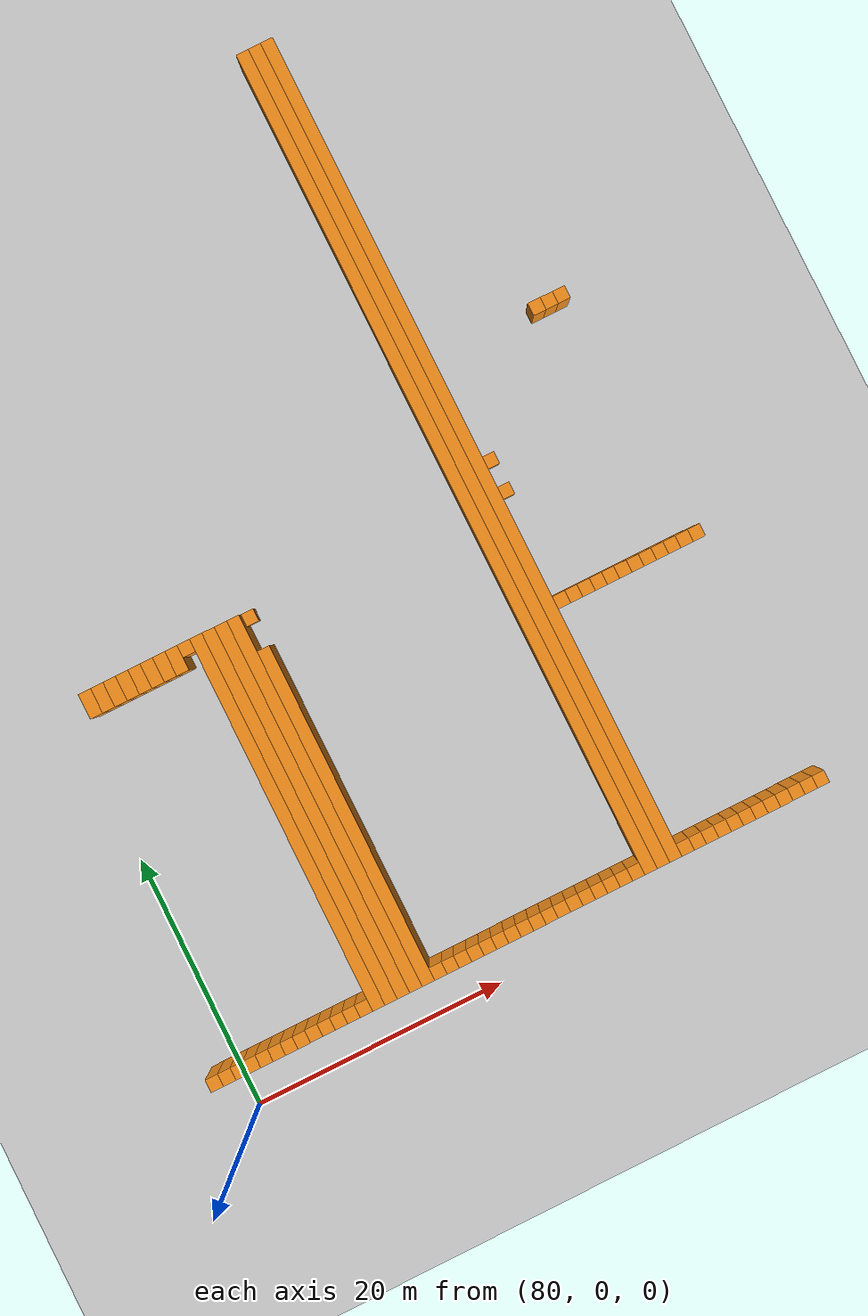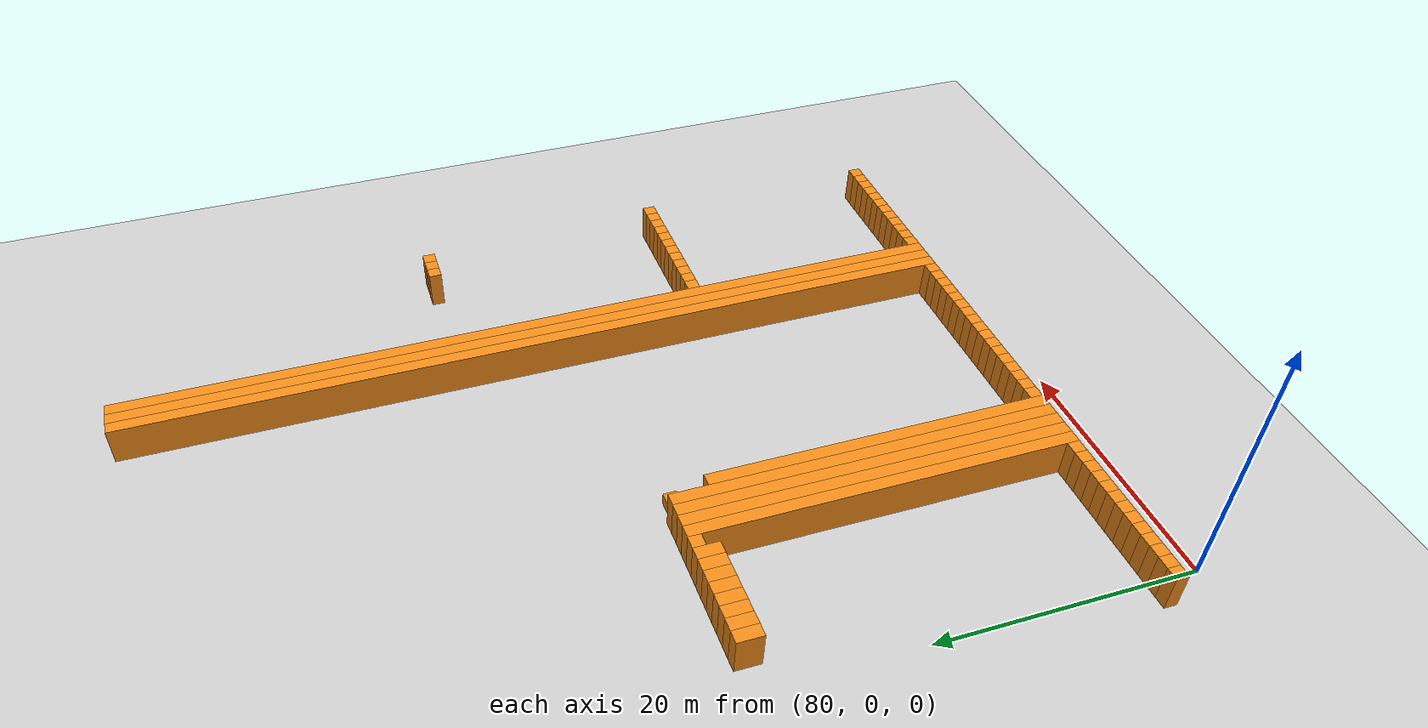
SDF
<sdf version="1.6">
 <world name="default">
  <include><uri>model://ground_plane</uri></include>
  <model name="unit_box_871">
   <pose>78.50     3.50     1.50 0 0 0</pose>
   <static>1</static>
   <link name="link">
    <inertial>
     <mass>5000</mass>
     <inertia><ixx>200</ixx><ixy>0</ixy><ixz>0</ixz><iyy>200</iyy><iyz>0</iyz><izz>200</izz></inertia>
    </inertial>
    <collision name="collision"><geometry><box><size>1 1 3</size></box></geometry></collision>
    <visual name="visual">
     <geometry><box><size>1 1 3</size></box></geometry>
     <material>
      <script><name>Gazebo/Orange</name><uri>file://media/materials/scripts/gazebo.material</uri></script>
     </material>
    </visual>
   </link>
  </model>
  <model name="unit_box_884">
   <pose>79.50     3.50     1.50 0 0 0</pose>
   <static>1</static>
   <link name="link">
    <inertial>
     <mass>5000</mass>
     <inertia><ixx>200</ixx><ixy>0</ixy><ixz>0</ixz><iyy>200</iyy><iyz>0</iyz><izz>200</izz></inertia>
    </inertial>
    <collision name="collision"><geometry><box><size>1 1 3</size></box></geometry></collision>
    <visual name="visual">
     <geometry><box><size>1 1 3</size></box></geometry>
     <material>
      <script><name>Gazebo/Orange</name><uri>file://media/materials/scripts/gazebo.material</uri></script>
     </material>
    </visual>
   </link>
  </model>
  <model name="unit_box_897">
   <pose>80.50     3.50     1.50 0 0 0</pose>
   <static>1</static>
   <link name="link">
    <inertial>
     <mass>5000</mass>
     <inertia><ixx>200</ixx><ixy>0</ixy><ixz>0</ixz><iyy>200</iyy><iyz>0</iyz><izz>200</izz></inertia>
    </inertial>
    <collision name="collision"><geometry><box><size>1 1 3</size></box></geometry></collision>
    <visual name="visual">
     <geometry><box><size>1 1 3</size></box></geometry>
     <material>
      <script><name>Gazebo/Orange</name><uri>file://media/materials/scripts/gazebo.material</uri></script>
     </material>
    </visual>
   </link>
  </model>
  <model name="unit_box_910">
   <pose>81.50     3.50     1.50 0 0 0</pose>
   <static>1</static>
   <link name="link">
    <inertial>
     <mass>5000</mass>
     <inertia><ixx>200</ixx><ixy>0</ixy><ixz>0</ixz><iyy>200</iyy><iyz>0</iyz><izz>200</izz></inertia>
    </inertial>
    <collision name="collision"><geometry><box><size>1 1 3</size></box></geometry></collision>
    <visual name="visual">
     <geometry><box><size>1 1 3</size></box></geometry>
     <material>
      <script><name>Gazebo/Orange</name><uri>file://media/materials/scripts/gazebo.material</uri></script>
     </material>
    </visual>
   </link>
  </model>
  <model name="unit_box_923">
   <pose>82.50     3.50     1.50 0 0 0</pose>
   <static>1</static>
   <link name="link">
    <inertial>
     <mass>5000</mass>
     <inertia><ixx>200</ixx><ixy>0</ixy><ixz>0</ixz><iyy>200</iyy><iyz>0</iyz><izz>200</izz></inertia>
    </inertial>
    <collision name="collision"><geometry><box><size>1 1 3</size></box></geometry></collision>
    <visual name="visual">
     <geometry><box><size>1 1 3</size></box></geometry>
     <material>
      <script><name>Gazebo/Orange</name><uri>file://media/materials/scripts/gazebo.material</uri></script>
     </material>
    </visual>
   </link>
  </model>
  <model name="unit_box_924">
   <pose>82.50    32.00     1.50 0 0 0</pose>
   <static>1</static>
   <link name="link">
    <inertial>
     <mass>5000</mass>
     <inertia><ixx>200</ixx><ixy>0</ixy><ixz>0</ixz><iyy>200</iyy><iyz>0</iyz><izz>200</izz></inertia>
    </inertial>
    <collision name="collision"><geometry><box><size>1 2 3</size></box></geometry></collision>
    <visual name="visual">
     <geometry><box><size>1 2 3</size></box></geometry>
     <material>
      <script><name>Gazebo/Orange</name><uri>file://media/materials/scripts/gazebo.material</uri></script>
     </material>
    </visual>
   </link>
  </model>
  <model name="unit_box_937">
   <pose>83.50     3.50     1.50 0 0 0</pose>
   <static>1</static>
   <link name="link">
    <inertial>
     <mass>5000</mass>
     <inertia><ixx>200</ixx><ixy>0</ixy><ixz>0</ixz><iyy>200</iyy><iyz>0</iyz><izz>200</izz></inertia>
    </inertial>
    <collision name="collision"><geometry><box><size>1 1 3</size></box></geometry></collision>
    <visual name="visual">
     <geometry><box><size>1 1 3</size></box></geometry>
     <material>
      <script><name>Gazebo/Orange</name><uri>file://media/materials/scripts/gazebo.material</uri></script>
     </material>
    </visual>
   </link>
  </model>
  <model name="unit_box_938">
   <pose>83.50    32.00     1.50 0 0 0</pose>
   <static>1</static>
   <link name="link">
    <inertial>
     <mass>5000</mass>
     <inertia><ixx>200</ixx><ixy>0</ixy><ixz>0</ixz><iyy>200</iyy><iyz>0</iyz><izz>200</izz></inertia>
    </inertial>
    <collision name="collision"><geometry><box><size>1 2 3</size></box></geometry></collision>
    <visual name="visual">
     <geometry><box><size>1 2 3</size></box></geometry>
     <material>
      <script><name>Gazebo/Orange</name><uri>file://media/materials/scripts/gazebo.material</uri></script>
     </material>
    </visual>
   </link>
  </model>
  <model name="unit_box_949">
   <pose>84.50     3.50     1.50 0 0 0</pose>
   <static>1</static>
   <link name="link">
    <inertial>
     <mass>5000</mass>
     <inertia><ixx>200</ixx><ixy>0</ixy><ixz>0</ixz><iyy>200</iyy><iyz>0</iyz><izz>200</izz></inertia>
    </inertial>
    <collision name="collision"><geometry><box><size>1 1 3</size></box></geometry></collision>
    <visual name="visual">
     <geometry><box><size>1 1 3</size></box></geometry>
     <material>
      <script><name>Gazebo/Orange</name><uri>file://media/materials/scripts/gazebo.material</uri></script>
     </material>
    </visual>
   </link>
  </model>
  <model name="unit_box_950">
   <pose>84.50    32.00     1.50 0 0 0</pose>
   <static>1</static>
   <link name="link">
    <inertial>
     <mass>5000</mass>
     <inertia><ixx>200</ixx><ixy>0</ixy><ixz>0</ixz><iyy>200</iyy><iyz>0</iyz><izz>200</izz></inertia>
    </inertial>
    <collision name="collision"><geometry><box><size>1 2 3</size></box></geometry></collision>
    <visual name="visual">
     <geometry><box><size>1 2 3</size></box></geometry>
     <material>
      <script><name>Gazebo/Orange</name><uri>file://media/materials/scripts/gazebo.material</uri></script>
     </material>
    </visual>
   </link>
  </model>
  <model name="unit_box_963">
   <pose>85.50     3.50     1.50 0 0 0</pose>
   <static>1</static>
   <link name="link">
    <inertial>
     <mass>5000</mass>
     <inertia><ixx>200</ixx><ixy>0</ixy><ixz>0</ixz><iyy>200</iyy><iyz>0</iyz><izz>200</izz></inertia>
    </inertial>
    <collision name="collision"><geometry><box><size>1 1 3</size></box></geometry></collision>
    <visual name="visual">
     <geometry><box><size>1 1 3</size></box></geometry>
     <material>
      <script><name>Gazebo/Orange</name><uri>file://media/materials/scripts/gazebo.material</uri></script>
     </material>
    </visual>
   </link>
  </model>
  <model name="unit_box_964">
   <pose>85.50    32.00     1.50 0 0 0</pose>
   <static>1</static>
   <link name="link">
    <inertial>
     <mass>5000</mass>
     <inertia><ixx>200</ixx><ixy>0</ixy><ixz>0</ixz><iyy>200</iyy><iyz>0</iyz><izz>200</izz></inertia>
    </inertial>
    <collision name="collision"><geometry><box><size>1 2 3</size></box></geometry></collision>
    <visual name="visual">
     <geometry><box><size>1 2 3</size></box></geometry>
     <material>
      <script><name>Gazebo/Orange</name><uri>file://media/materials/scripts/gazebo.material</uri></script>
     </material>
    </visual>
   </link>
  </model>
  <model name="unit_box_974">
   <pose>86.50     3.50     1.50 0 0 0</pose>
   <static>1</static>
   <link name="link">
    <inertial>
     <mass>5000</mass>
     <inertia><ixx>200</ixx><ixy>0</ixy><ixz>0</ixz><iyy>200</iyy><iyz>0</iyz><izz>200</izz></inertia>
    </inertial>
    <collision name="collision"><geometry><box><size>1 1 3</size></box></geometry></collision>
    <visual name="visual">
     <geometry><box><size>1 1 3</size></box></geometry>
     <material>
      <script><name>Gazebo/Orange</name><uri>file://media/materials/scripts/gazebo.material</uri></script>
     </material>
    </visual>
   </link>
  </model>
  <model name="unit_box_975">
   <pose>86.50    32.00     1.50 0 0 0</pose>
   <static>1</static>
   <link name="link">
    <inertial>
     <mass>5000</mass>
     <inertia><ixx>200</ixx><ixy>0</ixy><ixz>0</ixz><iyy>200</iyy><iyz>0</iyz><izz>200</izz></inertia>
    </inertial>
    <collision name="collision"><geometry><box><size>1 2 3</size></box></geometry></collision>
    <visual name="visual">
     <geometry><box><size>1 2 3</size></box></geometry>
     <material>
      <script><name>Gazebo/Orange</name><uri>file://media/materials/scripts/gazebo.material</uri></script>
     </material>
    </visual>
   </link>
  </model>
  <model name="unit_box_989">
   <pose>87.50     3.50     1.50 0 0 0</pose>
   <static>1</static>
   <link name="link">
    <inertial>
     <mass>5000</mass>
     <inertia><ixx>200</ixx><ixy>0</ixy><ixz>0</ixz><iyy>200</iyy><iyz>0</iyz><izz>200</izz></inertia>
    </inertial>
    <collision name="collision"><geometry><box><size>1 1 3</size></box></geometry></collision>
    <visual name="visual">
     <geometry><box><size>1 1 3</size></box></geometry>
     <material>
      <script><name>Gazebo/Orange</name><uri>file://media/materials/scripts/gazebo.material</uri></script>
     </material>
    </visual>
   </link>
  </model>
  <model name="unit_box_990">
   <pose>87.50    32.00     1.50 0 0 0</pose>
   <static>1</static>
   <link name="link">
    <inertial>
     <mass>5000</mass>
     <inertia><ixx>200</ixx><ixy>0</ixy><ixz>0</ixz><iyy>200</iyy><iyz>0</iyz><izz>200</izz></inertia>
    </inertial>
    <collision name="collision"><geometry><box><size>1 2 3</size></box></geometry></collision>
    <visual name="visual">
     <geometry><box><size>1 2 3</size></box></geometry>
     <material>
      <script><name>Gazebo/Orange</name><uri>file://media/materials/scripts/gazebo.material</uri></script>
     </material>
    </visual>
   </link>
  </model>
  <model name="unit_box_999">
   <pose>88.50     3.50     1.50 0 0 0</pose>
   <static>1</static>
   <link name="link">
    <inertial>
     <mass>5000</mass>
     <inertia><ixx>200</ixx><ixy>0</ixy><ixz>0</ixz><iyy>200</iyy><iyz>0</iyz><izz>200</izz></inertia>
    </inertial>
    <collision name="collision"><geometry><box><size>1 1 3</size></box></geometry></collision>
    <visual name="visual">
     <geometry><box><size>1 1 3</size></box></geometry>
     <material>
      <script><name>Gazebo/Orange</name><uri>file://media/materials/scripts/gazebo.material</uri></script>
     </material>
    </visual>
   </link>
  </model>
  <model name="unit_box_1000">
   <pose>88.50    32.00     1.50 0 0 0</pose>
   <static>1</static>
   <link name="link">
    <inertial>
     <mass>5000</mass>
     <inertia><ixx>200</ixx><ixy>0</ixy><ixz>0</ixz><iyy>200</iyy><iyz>0</iyz><izz>200</izz></inertia>
    </inertial>
    <collision name="collision"><geometry><box><size>1 2 3</size></box></geometry></collision>
    <visual name="visual">
     <geometry><box><size>1 2 3</size></box></geometry>
     <material>
      <script><name>Gazebo/Orange</name><uri>file://media/materials/scripts/gazebo.material</uri></script>
     </material>
    </visual>
   </link>
  </model>
  <model name="unit_box_1010">
   <pose>89.50     3.50     1.50 0 0 0</pose>
   <static>1</static>
   <link name="link">
    <inertial>
     <mass>5000</mass>
     <inertia><ixx>200</ixx><ixy>0</ixy><ixz>0</ixz><iyy>200</iyy><iyz>0</iyz><izz>200</izz></inertia>
    </inertial>
    <collision name="collision"><geometry><box><size>1 1 3</size></box></geometry></collision>
    <visual name="visual">
     <geometry><box><size>1 1 3</size></box></geometry>
     <material>
      <script><name>Gazebo/Orange</name><uri>file://media/materials/scripts/gazebo.material</uri></script>
     </material>
    </visual>
   </link>
  </model>
  <model name="unit_box_1011">
   <pose>89.50    32.00     1.50 0 0 0</pose>
   <static>1</static>
   <link name="link">
    <inertial>
     <mass>5000</mass>
     <inertia><ixx>200</ixx><ixy>0</ixy><ixz>0</ixz><iyy>200</iyy><iyz>0</iyz><izz>200</izz></inertia>
    </inertial>
    <collision name="collision"><geometry><box><size>1 2 3</size></box></geometry></collision>
    <visual name="visual">
     <geometry><box><size>1 2 3</size></box></geometry>
     <material>
      <script><name>Gazebo/Orange</name><uri>file://media/materials/scripts/gazebo.material</uri></script>
     </material>
    </visual>
   </link>
  </model>
  <model name="unit_box_1019">
   <pose>90.50     3.50     1.50 0 0 0</pose>
   <static>1</static>
   <link name="link">
    <inertial>
     <mass>5000</mass>
     <inertia><ixx>200</ixx><ixy>0</ixy><ixz>0</ixz><iyy>200</iyy><iyz>0</iyz><izz>200</izz></inertia>
    </inertial>
    <collision name="collision"><geometry><box><size>1 1 3</size></box></geometry></collision>
    <visual name="visual">
     <geometry><box><size>1 1 3</size></box></geometry>
     <material>
      <script><name>Gazebo/Orange</name><uri>file://media/materials/scripts/gazebo.material</uri></script>
     </material>
    </visual>
   </link>
  </model>
  <model name="unit_box_1020">
   <pose>90.50    32.50     1.50 0 0 0</pose>
   <static>1</static>
   <link name="link">
    <inertial>
     <mass>5000</mass>
     <inertia><ixx>200</ixx><ixy>0</ixy><ixz>0</ixz><iyy>200</iyy><iyz>0</iyz><izz>200</izz></inertia>
    </inertial>
    <collision name="collision"><geometry><box><size>1 1 3</size></box></geometry></collision>
    <visual name="visual">
     <geometry><box><size>1 1 3</size></box></geometry>
     <material>
      <script><name>Gazebo/Orange</name><uri>file://media/materials/scripts/gazebo.material</uri></script>
     </material>
    </visual>
   </link>
  </model>
  <model name="unit_box_1028">
   <pose>91.50    18.00     1.50 0 0 0</pose>
   <static>1</static>
   <link name="link">
    <inertial>
     <mass>5000</mass>
     <inertia><ixx>200</ixx><ixy>0</ixy><ixz>0</ixz><iyy>200</iyy><iyz>0</iyz><izz>200</izz></inertia>
    </inertial>
    <collision name="collision"><geometry><box><size>1 30 3</size></box></geometry></collision>
    <visual name="visual">
     <geometry><box><size>1 30 3</size></box></geometry>
     <material>
      <script><name>Gazebo/Orange</name><uri>file://media/materials/scripts/gazebo.material</uri></script>
     </material>
    </visual>
   </link>
  </model>
  <model name="unit_box_1037">
   <pose>92.50    18.00     1.50 0 0 0</pose>
   <static>1</static>
   <link name="link">
    <inertial>
     <mass>5000</mass>
     <inertia><ixx>200</ixx><ixy>0</ixy><ixz>0</ixz><iyy>200</iyy><iyz>0</iyz><izz>200</izz></inertia>
    </inertial>
    <collision name="collision"><geometry><box><size>1 30 3</size></box></geometry></collision>
    <visual name="visual">
     <geometry><box><size>1 30 3</size></box></geometry>
     <material>
      <script><name>Gazebo/Orange</name><uri>file://media/materials/scripts/gazebo.material</uri></script>
     </material>
    </visual>
   </link>
  </model>
  <model name="unit_box_1046">
   <pose>93.50    18.00     1.50 0 0 0</pose>
   <static>1</static>
   <link name="link">
    <inertial>
     <mass>5000</mass>
     <inertia><ixx>200</ixx><ixy>0</ixy><ixz>0</ixz><iyy>200</iyy><iyz>0</iyz><izz>200</izz></inertia>
    </inertial>
    <collision name="collision"><geometry><box><size>1 30 3</size></box></geometry></collision>
    <visual name="visual">
     <geometry><box><size>1 30 3</size></box></geometry>
     <material>
      <script><name>Gazebo/Orange</name><uri>file://media/materials/scripts/gazebo.material</uri></script>
     </material>
    </visual>
   </link>
  </model>
  <model name="unit_box_1054">
   <pose>94.50    18.00     1.50 0 0 0</pose>
   <static>1</static>
   <link name="link">
    <inertial>
     <mass>5000</mass>
     <inertia><ixx>200</ixx><ixy>0</ixy><ixz>0</ixz><iyy>200</iyy><iyz>0</iyz><izz>200</izz></inertia>
    </inertial>
    <collision name="collision"><geometry><box><size>1 30 3</size></box></geometry></collision>
    <visual name="visual">
     <geometry><box><size>1 30 3</size></box></geometry>
     <material>
      <script><name>Gazebo/Orange</name><uri>file://media/materials/scripts/gazebo.material</uri></script>
     </material>
    </visual>
   </link>
  </model>
  <model name="unit_box_1064">
   <pose>95.50    16.50     1.50 0 0 0</pose>
   <static>1</static>
   <link name="link">
    <inertial>
     <mass>5000</mass>
     <inertia><ixx>200</ixx><ixy>0</ixy><ixz>0</ixz><iyy>200</iyy><iyz>0</iyz><izz>200</izz></inertia>
    </inertial>
    <collision name="collision"><geometry><box><size>1 27 3</size></box></geometry></collision>
    <visual name="visual">
     <geometry><box><size>1 27 3</size></box></geometry>
     <material>
      <script><name>Gazebo/Orange</name><uri>file://media/materials/scripts/gazebo.material</uri></script>
     </material>
    </visual>
   </link>
  </model>
  <model name="unit_box_1065">
   <pose>95.50    32.50     1.50 0 0 0</pose>
   <static>1</static>
   <link name="link">
    <inertial>
     <mass>5000</mass>
     <inertia><ixx>200</ixx><ixy>0</ixy><ixz>0</ixz><iyy>200</iyy><iyz>0</iyz><izz>200</izz></inertia>
    </inertial>
    <collision name="collision"><geometry><box><size>1 1 1</size></box></geometry></collision>
    <visual name="visual">
     <geometry><box><size>1 1 1</size></box></geometry>
     <material>
      <script><name>Gazebo/Orange</name><uri>file://media/materials/scripts/gazebo.material</uri></script>
     </material>
    </visual>
   </link>
  </model>
  <model name="unit_box_1076">
   <pose>96.50     3.50     1.50 0 0 0</pose>
   <static>1</static>
   <link name="link">
    <inertial>
     <mass>5000</mass>
     <inertia><ixx>200</ixx><ixy>0</ixy><ixz>0</ixz><iyy>200</iyy><iyz>0</iyz><izz>200</izz></inertia>
    </inertial>
    <collision name="collision"><geometry><box><size>1 1 3</size></box></geometry></collision>
    <visual name="visual">
     <geometry><box><size>1 1 3</size></box></geometry>
     <material>
      <script><name>Gazebo/Orange</name><uri>file://media/materials/scripts/gazebo.material</uri></script>
     </material>
    </visual>
   </link>
  </model>
  <model name="unit_box_1088">
   <pose>97.50     3.50     1.50 0 0 0</pose>
   <static>1</static>
   <link name="link">
    <inertial>
     <mass>5000</mass>
     <inertia><ixx>200</ixx><ixy>0</ixy><ixz>0</ixz><iyy>200</iyy><iyz>0</iyz><izz>200</izz></inertia>
    </inertial>
    <collision name="collision"><geometry><box><size>1 1 3</size></box></geometry></collision>
    <visual name="visual">
     <geometry><box><size>1 1 3</size></box></geometry>
     <material>
      <script><name>Gazebo/Orange</name><uri>file://media/materials/scripts/gazebo.material</uri></script>
     </material>
    </visual>
   </link>
  </model>
  <model name="unit_box_1098">
   <pose>98.50     3.50     1.50 0 0 0</pose>
   <static>1</static>
   <link name="link">
    <inertial>
     <mass>5000</mass>
     <inertia><ixx>200</ixx><ixy>0</ixy><ixz>0</ixz><iyy>200</iyy><iyz>0</iyz><izz>200</izz></inertia>
    </inertial>
    <collision name="collision"><geometry><box><size>1 1 3</size></box></geometry></collision>
    <visual name="visual">
     <geometry><box><size>1 1 3</size></box></geometry>
     <material>
      <script><name>Gazebo/Orange</name><uri>file://media/materials/scripts/gazebo.material</uri></script>
     </material>
    </visual>
   </link>
  </model>
  <model name="unit_box_1109">
   <pose>99.50     3.50     1.50 0 0 0</pose>
   <static>1</static>
   <link name="link">
    <inertial>
     <mass>5000</mass>
     <inertia><ixx>200</ixx><ixy>0</ixy><ixz>0</ixz><iyy>200</iyy><iyz>0</iyz><izz>200</izz></inertia>
    </inertial>
    <collision name="collision"><geometry><box><size>1 1 3</size></box></geometry></collision>
    <visual name="visual">
     <geometry><box><size>1 1 3</size></box></geometry>
     <material>
      <script><name>Gazebo/Orange</name><uri>file://media/materials/scripts/gazebo.material</uri></script>
     </material>
    </visual>
   </link>
  </model>
  <model name="unit_box_1121">
   <pose>100.50     3.50     1.50 0 0 0</pose>
   <static>1</static>
   <link name="link">
    <inertial>
     <mass>5000</mass>
     <inertia><ixx>200</ixx><ixy>0</ixy><ixz>0</ixz><iyy>200</iyy><iyz>0</iyz><izz>200</izz></inertia>
    </inertial>
    <collision name="collision"><geometry><box><size>1 1 3</size></box></geometry></collision>
    <visual name="visual">
     <geometry><box><size>1 1 3</size></box></geometry>
     <material>
      <script><name>Gazebo/Orange</name><uri>file://media/materials/scripts/gazebo.material</uri></script>
     </material>
    </visual>
   </link>
  </model>
  <model name="unit_box_1133">
   <pose>101.50     3.50     1.50 0 0 0</pose>
   <static>1</static>
   <link name="link">
    <inertial>
     <mass>5000</mass>
     <inertia><ixx>200</ixx><ixy>0</ixy><ixz>0</ixz><iyy>200</iyy><iyz>0</iyz><izz>200</izz></inertia>
    </inertial>
    <collision name="collision"><geometry><box><size>1 1 3</size></box></geometry></collision>
    <visual name="visual">
     <geometry><box><size>1 1 3</size></box></geometry>
     <material>
      <script><name>Gazebo/Orange</name><uri>file://media/materials/scripts/gazebo.material</uri></script>
     </material>
    </visual>
   </link>
  </model>
  <model name="unit_box_1144">
   <pose>102.50     3.50     1.50 0 0 0</pose>
   <static>1</static>
   <link name="link">
    <inertial>
     <mass>5000</mass>
     <inertia><ixx>200</ixx><ixy>0</ixy><ixz>0</ixz><iyy>200</iyy><iyz>0</iyz><izz>200</izz></inertia>
    </inertial>
    <collision name="collision"><geometry><box><size>1 1 3</size></box></geometry></collision>
    <visual name="visual">
     <geometry><box><size>1 1 3</size></box></geometry>
     <material>
      <script><name>Gazebo/Orange</name><uri>file://media/materials/scripts/gazebo.material</uri></script>
     </material>
    </visual>
   </link>
  </model>
  <model name="unit_box_1154">
   <pose>103.50     3.50     1.50 0 0 0</pose>
   <static>1</static>
   <link name="link">
    <inertial>
     <mass>5000</mass>
     <inertia><ixx>200</ixx><ixy>0</ixy><ixz>0</ixz><iyy>200</iyy><iyz>0</iyz><izz>200</izz></inertia>
    </inertial>
    <collision name="collision"><geometry><box><size>1 1 3</size></box></geometry></collision>
    <visual name="visual">
     <geometry><box><size>1 1 3</size></box></geometry>
     <material>
      <script><name>Gazebo/Orange</name><uri>file://media/materials/scripts/gazebo.material</uri></script>
     </material>
    </visual>
   </link>
  </model>
  <model name="unit_box_1164">
   <pose>104.50     3.50     1.50 0 0 0</pose>
   <static>1</static>
   <link name="link">
    <inertial>
     <mass>5000</mass>
     <inertia><ixx>200</ixx><ixy>0</ixy><ixz>0</ixz><iyy>200</iyy><iyz>0</iyz><izz>200</izz></inertia>
    </inertial>
    <collision name="collision"><geometry><box><size>1 1 3</size></box></geometry></collision>
    <visual name="visual">
     <geometry><box><size>1 1 3</size></box></geometry>
     <material>
      <script><name>Gazebo/Orange</name><uri>file://media/materials/scripts/gazebo.material</uri></script>
     </material>
    </visual>
   </link>
  </model>
  <model name="unit_box_1174">
   <pose>105.50     3.50     1.50 0 0 0</pose>
   <static>1</static>
   <link name="link">
    <inertial>
     <mass>5000</mass>
     <inertia><ixx>200</ixx><ixy>0</ixy><ixz>0</ixz><iyy>200</iyy><iyz>0</iyz><izz>200</izz></inertia>
    </inertial>
    <collision name="collision"><geometry><box><size>1 1 3</size></box></geometry></collision>
    <visual name="visual">
     <geometry><box><size>1 1 3</size></box></geometry>
     <material>
      <script><name>Gazebo/Orange</name><uri>file://media/materials/scripts/gazebo.material</uri></script>
     </material>
    </visual>
   </link>
  </model>
  <model name="unit_box_1184">
   <pose>106.50     3.50     1.50 0 0 0</pose>
   <static>1</static>
   <link name="link">
    <inertial>
     <mass>5000</mass>
     <inertia><ixx>200</ixx><ixy>0</ixy><ixz>0</ixz><iyy>200</iyy><iyz>0</iyz><izz>200</izz></inertia>
    </inertial>
    <collision name="collision"><geometry><box><size>1 1 3</size></box></geometry></collision>
    <visual name="visual">
     <geometry><box><size>1 1 3</size></box></geometry>
     <material>
      <script><name>Gazebo/Orange</name><uri>file://media/materials/scripts/gazebo.material</uri></script>
     </material>
    </visual>
   </link>
  </model>
  <model name="unit_box_1193">
   <pose>107.50     3.50     1.50 0 0 0</pose>
   <static>1</static>
   <link name="link">
    <inertial>
     <mass>5000</mass>
     <inertia><ixx>200</ixx><ixy>0</ixy><ixz>0</ixz><iyy>200</iyy><iyz>0</iyz><izz>200</izz></inertia>
    </inertial>
    <collision name="collision"><geometry><box><size>1 1 3</size></box></geometry></collision>
    <visual name="visual">
     <geometry><box><size>1 1 3</size></box></geometry>
     <material>
      <script><name>Gazebo/Orange</name><uri>file://media/materials/scripts/gazebo.material</uri></script>
     </material>
    </visual>
   </link>
  </model>
  <model name="unit_box_1202">
   <pose>108.50     3.50     1.50 0 0 0</pose>
   <static>1</static>
   <link name="link">
    <inertial>
     <mass>5000</mass>
     <inertia><ixx>200</ixx><ixy>0</ixy><ixz>0</ixz><iyy>200</iyy><iyz>0</iyz><izz>200</izz></inertia>
    </inertial>
    <collision name="collision"><geometry><box><size>1 1 3</size></box></geometry></collision>
    <visual name="visual">
     <geometry><box><size>1 1 3</size></box></geometry>
     <material>
      <script><name>Gazebo/Orange</name><uri>file://media/materials/scripts/gazebo.material</uri></script>
     </material>
    </visual>
   </link>
  </model>
  <model name="unit_box_1211">
   <pose>109.50     3.50     1.50 0 0 0</pose>
   <static>1</static>
   <link name="link">
    <inertial>
     <mass>5000</mass>
     <inertia><ixx>200</ixx><ixy>0</ixy><ixz>0</ixz><iyy>200</iyy><iyz>0</iyz><izz>200</izz></inertia>
    </inertial>
    <collision name="collision"><geometry><box><size>1 1 3</size></box></geometry></collision>
    <visual name="visual">
     <geometry><box><size>1 1 3</size></box></geometry>
     <material>
      <script><name>Gazebo/Orange</name><uri>file://media/materials/scripts/gazebo.material</uri></script>
     </material>
    </visual>
   </link>
  </model>
  <model name="unit_box_1220">
   <pose>110.50     3.50     1.50 0 0 0</pose>
   <static>1</static>
   <link name="link">
    <inertial>
     <mass>5000</mass>
     <inertia><ixx>200</ixx><ixy>0</ixy><ixz>0</ixz><iyy>200</iyy><iyz>0</iyz><izz>200</izz></inertia>
    </inertial>
    <collision name="collision"><geometry><box><size>1 1 3</size></box></geometry></collision>
    <visual name="visual">
     <geometry><box><size>1 1 3</size></box></geometry>
     <material>
      <script><name>Gazebo/Orange</name><uri>file://media/materials/scripts/gazebo.material</uri></script>
     </material>
    </visual>
   </link>
  </model>
  <model name="unit_box_1229">
   <pose>111.50     3.50     1.50 0 0 0</pose>
   <static>1</static>
   <link name="link">
    <inertial>
     <mass>5000</mass>
     <inertia><ixx>200</ixx><ixy>0</ixy><ixz>0</ixz><iyy>200</iyy><iyz>0</iyz><izz>200</izz></inertia>
    </inertial>
    <collision name="collision"><geometry><box><size>1 1 3</size></box></geometry></collision>
    <visual name="visual">
     <geometry><box><size>1 1 3</size></box></geometry>
     <material>
      <script><name>Gazebo/Orange</name><uri>file://media/materials/scripts/gazebo.material</uri></script>
     </material>
    </visual>
   </link>
  </model>
  <model name="unit_box_1239">
   <pose>112.50     3.50     1.50 0 0 0</pose>
   <static>1</static>
   <link name="link">
    <inertial>
     <mass>5000</mass>
     <inertia><ixx>200</ixx><ixy>0</ixy><ixz>0</ixz><iyy>200</iyy><iyz>0</iyz><izz>200</izz></inertia>
    </inertial>
    <collision name="collision"><geometry><box><size>1 1 3</size></box></geometry></collision>
    <visual name="visual">
     <geometry><box><size>1 1 3</size></box></geometry>
     <material>
      <script><name>Gazebo/Orange</name><uri>file://media/materials/scripts/gazebo.material</uri></script>
     </material>
    </visual>
   </link>
  </model>
  <model name="unit_box_1249">
   <pose>113.50    36.50     1.50 0 0 0</pose>
   <static>1</static>
   <link name="link">
    <inertial>
     <mass>5000</mass>
     <inertia><ixx>200</ixx><ixy>0</ixy><ixz>0</ixz><iyy>200</iyy><iyz>0</iyz><izz>200</izz></inertia>
    </inertial>
    <collision name="collision"><geometry><box><size>1 67 3</size></box></geometry></collision>
    <visual name="visual">
     <geometry><box><size>1 67 3</size></box></geometry>
     <material>
      <script><name>Gazebo/Orange</name><uri>file://media/materials/scripts/gazebo.material</uri></script>
     </material>
    </visual>
   </link>
  </model>
  <model name="unit_box_1259">
   <pose>114.50    36.50     1.50 0 0 0</pose>
   <static>1</static>
   <link name="link">
    <inertial>
     <mass>5000</mass>
     <inertia><ixx>200</ixx><ixy>0</ixy><ixz>0</ixz><iyy>200</iyy><iyz>0</iyz><izz>200</izz></inertia>
    </inertial>
    <collision name="collision"><geometry><box><size>1 67 3</size></box></geometry></collision>
    <visual name="visual">
     <geometry><box><size>1 67 3</size></box></geometry>
     <material>
      <script><name>Gazebo/Orange</name><uri>file://media/materials/scripts/gazebo.material</uri></script>
     </material>
    </visual>
   </link>
  </model>
  <model name="unit_box_1269">
   <pose>115.50    36.50     1.50 0 0 0</pose>
   <static>1</static>
   <link name="link">
    <inertial>
     <mass>5000</mass>
     <inertia><ixx>200</ixx><ixy>0</ixy><ixz>0</ixz><iyy>200</iyy><iyz>0</iyz><izz>200</izz></inertia>
    </inertial>
    <collision name="collision"><geometry><box><size>1 67 3</size></box></geometry></collision>
    <visual name="visual">
     <geometry><box><size>1 67 3</size></box></geometry>
     <material>
      <script><name>Gazebo/Orange</name><uri>file://media/materials/scripts/gazebo.material</uri></script>
     </material>
    </visual>
   </link>
  </model>
  <model name="unit_box_1279">
   <pose>116.50     3.50     1.50 0 0 0</pose>
   <static>1</static>
   <link name="link">
    <inertial>
     <mass>5000</mass>
     <inertia><ixx>200</ixx><ixy>0</ixy><ixz>0</ixz><iyy>200</iyy><iyz>0</iyz><izz>200</izz></inertia>
    </inertial>
    <collision name="collision"><geometry><box><size>1 1 3</size></box></geometry></collision>
    <visual name="visual">
     <geometry><box><size>1 1 3</size></box></geometry>
     <material>
      <script><name>Gazebo/Orange</name><uri>file://media/materials/scripts/gazebo.material</uri></script>
     </material>
    </visual>
   </link>
  </model>
  <model name="unit_box_1280">
   <pose>116.50    23.50     1.50 0 0 0</pose>
   <static>1</static>
   <link name="link">
    <inertial>
     <mass>5000</mass>
     <inertia><ixx>200</ixx><ixy>0</ixy><ixz>0</ixz><iyy>200</iyy><iyz>0</iyz><izz>200</izz></inertia>
    </inertial>
    <collision name="collision"><geometry><box><size>1 1 3</size></box></geometry></collision>
    <visual name="visual">
     <geometry><box><size>1 1 3</size></box></geometry>
     <material>
      <script><name>Gazebo/Orange</name><uri>file://media/materials/scripts/gazebo.material</uri></script>
     </material>
    </visual>
   </link>
  </model>
  <model name="unit_box_1281">
   <pose>116.50    32.50     1.50 0 0 0</pose>
   <static>1</static>
   <link name="link">
    <inertial>
     <mass>5000</mass>
     <inertia><ixx>200</ixx><ixy>0</ixy><ixz>0</ixz><iyy>200</iyy><iyz>0</iyz><izz>200</izz></inertia>
    </inertial>
    <collision name="collision"><geometry><box><size>1 1 1</size></box></geometry></collision>
    <visual name="visual">
     <geometry><box><size>1 1 1</size></box></geometry>
     <material>
      <script><name>Gazebo/Orange</name><uri>file://media/materials/scripts/gazebo.material</uri></script>
     </material>
    </visual>
   </link>
  </model>
  <model name="unit_box_1282">
   <pose>116.50    35.00     1.50 0 0 0</pose>
   <static>1</static>
   <link name="link">
    <inertial>
     <mass>5000</mass>
     <inertia><ixx>200</ixx><ixy>0</ixy><ixz>0</ixz><iyy>200</iyy><iyz>0</iyz><izz>200</izz></inertia>
    </inertial>
    <collision name="collision"><geometry><box><size>1 1 1</size></box></geometry></collision>
    <visual name="visual">
     <geometry><box><size>1 1 1</size></box></geometry>
     <material>
      <script><name>Gazebo/Orange</name><uri>file://media/materials/scripts/gazebo.material</uri></script>
     </material>
    </visual>
   </link>
  </model>
  <model name="unit_box_1293">
   <pose>117.50     3.50     1.50 0 0 0</pose>
   <static>1</static>
   <link name="link">
    <inertial>
     <mass>5000</mass>
     <inertia><ixx>200</ixx><ixy>0</ixy><ixz>0</ixz><iyy>200</iyy><iyz>0</iyz><izz>200</izz></inertia>
    </inertial>
    <collision name="collision"><geometry><box><size>1 1 3</size></box></geometry></collision>
    <visual name="visual">
     <geometry><box><size>1 1 3</size></box></geometry>
     <material>
      <script><name>Gazebo/Orange</name><uri>file://media/materials/scripts/gazebo.material</uri></script>
     </material>
    </visual>
   </link>
  </model>
  <model name="unit_box_1294">
   <pose>117.50    23.50     1.50 0 0 0</pose>
   <static>1</static>
   <link name="link">
    <inertial>
     <mass>5000</mass>
     <inertia><ixx>200</ixx><ixy>0</ixy><ixz>0</ixz><iyy>200</iyy><iyz>0</iyz><izz>200</izz></inertia>
    </inertial>
    <collision name="collision"><geometry><box><size>1 1 3</size></box></geometry></collision>
    <visual name="visual">
     <geometry><box><size>1 1 3</size></box></geometry>
     <material>
      <script><name>Gazebo/Orange</name><uri>file://media/materials/scripts/gazebo.material</uri></script>
     </material>
    </visual>
   </link>
  </model>
  <model name="unit_box_1305">
   <pose>118.50     3.50     1.50 0 0 0</pose>
   <static>1</static>
   <link name="link">
    <inertial>
     <mass>5000</mass>
     <inertia><ixx>200</ixx><ixy>0</ixy><ixz>0</ixz><iyy>200</iyy><iyz>0</iyz><izz>200</izz></inertia>
    </inertial>
    <collision name="collision"><geometry><box><size>1 1 3</size></box></geometry></collision>
    <visual name="visual">
     <geometry><box><size>1 1 3</size></box></geometry>
     <material>
      <script><name>Gazebo/Orange</name><uri>file://media/materials/scripts/gazebo.material</uri></script>
     </material>
    </visual>
   </link>
  </model>
  <model name="unit_box_1306">
   <pose>118.50    23.50     1.50 0 0 0</pose>
   <static>1</static>
   <link name="link">
    <inertial>
     <mass>5000</mass>
     <inertia><ixx>200</ixx><ixy>0</ixy><ixz>0</ixz><iyy>200</iyy><iyz>0</iyz><izz>200</izz></inertia>
    </inertial>
    <collision name="collision"><geometry><box><size>1 1 3</size></box></geometry></collision>
    <visual name="visual">
     <geometry><box><size>1 1 3</size></box></geometry>
     <material>
      <script><name>Gazebo/Orange</name><uri>file://media/materials/scripts/gazebo.material</uri></script>
     </material>
    </visual>
   </link>
  </model>
  <model name="unit_box_1316">
   <pose>119.50     3.50     1.50 0 0 0</pose>
   <static>1</static>
   <link name="link">
    <inertial>
     <mass>5000</mass>
     <inertia><ixx>200</ixx><ixy>0</ixy><ixz>0</ixz><iyy>200</iyy><iyz>0</iyz><izz>200</izz></inertia>
    </inertial>
    <collision name="collision"><geometry><box><size>1 1 3</size></box></geometry></collision>
    <visual name="visual">
     <geometry><box><size>1 1 3</size></box></geometry>
     <material>
      <script><name>Gazebo/Orange</name><uri>file://media/materials/scripts/gazebo.material</uri></script>
     </material>
    </visual>
   </link>
  </model>
  <model name="unit_box_1317">
   <pose>119.50    23.50     1.50 0 0 0</pose>
   <static>1</static>
   <link name="link">
    <inertial>
     <mass>5000</mass>
     <inertia><ixx>200</ixx><ixy>0</ixy><ixz>0</ixz><iyy>200</iyy><iyz>0</iyz><izz>200</izz></inertia>
    </inertial>
    <collision name="collision"><geometry><box><size>1 1 3</size></box></geometry></collision>
    <visual name="visual">
     <geometry><box><size>1 1 3</size></box></geometry>
     <material>
      <script><name>Gazebo/Orange</name><uri>file://media/materials/scripts/gazebo.material</uri></script>
     </material>
    </visual>
   </link>
  </model>
  <model name="unit_box_1330">
   <pose>120.50     3.50     1.50 0 0 0</pose>
   <static>1</static>
   <link name="link">
    <inertial>
     <mass>5000</mass>
     <inertia><ixx>200</ixx><ixy>0</ixy><ixz>0</ixz><iyy>200</iyy><iyz>0</iyz><izz>200</izz></inertia>
    </inertial>
    <collision name="collision"><geometry><box><size>1 1 3</size></box></geometry></collision>
    <visual name="visual">
     <geometry><box><size>1 1 3</size></box></geometry>
     <material>
      <script><name>Gazebo/Orange</name><uri>file://media/materials/scripts/gazebo.material</uri></script>
     </material>
    </visual>
   </link>
  </model>
  <model name="unit_box_1331">
   <pose>120.50    23.50     1.50 0 0 0</pose>
   <static>1</static>
   <link name="link">
    <inertial>
     <mass>5000</mass>
     <inertia><ixx>200</ixx><ixy>0</ixy><ixz>0</ixz><iyy>200</iyy><iyz>0</iyz><izz>200</izz></inertia>
    </inertial>
    <collision name="collision"><geometry><box><size>1 1 3</size></box></geometry></collision>
    <visual name="visual">
     <geometry><box><size>1 1 3</size></box></geometry>
     <material>
      <script><name>Gazebo/Orange</name><uri>file://media/materials/scripts/gazebo.material</uri></script>
     </material>
    </visual>
   </link>
  </model>
  <model name="unit_box_1342">
   <pose>121.50     3.50     1.50 0 0 0</pose>
   <static>1</static>
   <link name="link">
    <inertial>
     <mass>5000</mass>
     <inertia><ixx>200</ixx><ixy>0</ixy><ixz>0</ixz><iyy>200</iyy><iyz>0</iyz><izz>200</izz></inertia>
    </inertial>
    <collision name="collision"><geometry><box><size>1 1 3</size></box></geometry></collision>
    <visual name="visual">
     <geometry><box><size>1 1 3</size></box></geometry>
     <material>
      <script><name>Gazebo/Orange</name><uri>file://media/materials/scripts/gazebo.material</uri></script>
     </material>
    </visual>
   </link>
  </model>
  <model name="unit_box_1343">
   <pose>121.50    23.50     1.50 0 0 0</pose>
   <static>1</static>
   <link name="link">
    <inertial>
     <mass>5000</mass>
     <inertia><ixx>200</ixx><ixy>0</ixy><ixz>0</ixz><iyy>200</iyy><iyz>0</iyz><izz>200</izz></inertia>
    </inertial>
    <collision name="collision"><geometry><box><size>1 1 3</size></box></geometry></collision>
    <visual name="visual">
     <geometry><box><size>1 1 3</size></box></geometry>
     <material>
      <script><name>Gazebo/Orange</name><uri>file://media/materials/scripts/gazebo.material</uri></script>
     </material>
    </visual>
   </link>
  </model>
  <model name="unit_box_1351">
   <pose>122.50     3.50     1.50 0 0 0</pose>
   <static>1</static>
   <link name="link">
    <inertial>
     <mass>5000</mass>
     <inertia><ixx>200</ixx><ixy>0</ixy><ixz>0</ixz><iyy>200</iyy><iyz>0</iyz><izz>200</izz></inertia>
    </inertial>
    <collision name="collision"><geometry><box><size>1 1 3</size></box></geometry></collision>
    <visual name="visual">
     <geometry><box><size>1 1 3</size></box></geometry>
     <material>
      <script><name>Gazebo/Orange</name><uri>file://media/materials/scripts/gazebo.material</uri></script>
     </material>
    </visual>
   </link>
  </model>
  <model name="unit_box_1352">
   <pose>122.50    23.50     1.50 0 0 0</pose>
   <static>1</static>
   <link name="link">
    <inertial>
     <mass>5000</mass>
     <inertia><ixx>200</ixx><ixy>0</ixy><ixz>0</ixz><iyy>200</iyy><iyz>0</iyz><izz>200</izz></inertia>
    </inertial>
    <collision name="collision"><geometry><box><size>1 1 3</size></box></geometry></collision>
    <visual name="visual">
     <geometry><box><size>1 1 3</size></box></geometry>
     <material>
      <script><name>Gazebo/Orange</name><uri>file://media/materials/scripts/gazebo.material</uri></script>
     </material>
    </visual>
   </link>
  </model>
  <model name="unit_box_1358">
   <pose>123.50     3.50     1.50 0 0 0</pose>
   <static>1</static>
   <link name="link">
    <inertial>
     <mass>5000</mass>
     <inertia><ixx>200</ixx><ixy>0</ixy><ixz>0</ixz><iyy>200</iyy><iyz>0</iyz><izz>200</izz></inertia>
    </inertial>
    <collision name="collision"><geometry><box><size>1 1 3</size></box></geometry></collision>
    <visual name="visual">
     <geometry><box><size>1 1 3</size></box></geometry>
     <material>
      <script><name>Gazebo/Orange</name><uri>file://media/materials/scripts/gazebo.material</uri></script>
     </material>
    </visual>
   </link>
  </model>
  <model name="unit_box_1359">
   <pose>123.50    23.50     1.50 0 0 0</pose>
   <static>1</static>
   <link name="link">
    <inertial>
     <mass>5000</mass>
     <inertia><ixx>200</ixx><ixy>0</ixy><ixz>0</ixz><iyy>200</iyy><iyz>0</iyz><izz>200</izz></inertia>
    </inertial>
    <collision name="collision"><geometry><box><size>1 1 3</size></box></geometry></collision>
    <visual name="visual">
     <geometry><box><size>1 1 3</size></box></geometry>
     <material>
      <script><name>Gazebo/Orange</name><uri>file://media/materials/scripts/gazebo.material</uri></script>
     </material>
    </visual>
   </link>
  </model>
  <model name="unit_box_1366">
   <pose>124.50     3.50     1.50 0 0 0</pose>
   <static>1</static>
   <link name="link">
    <inertial>
     <mass>5000</mass>
     <inertia><ixx>200</ixx><ixy>0</ixy><ixz>0</ixz><iyy>200</iyy><iyz>0</iyz><izz>200</izz></inertia>
    </inertial>
    <collision name="collision"><geometry><box><size>1 1 3</size></box></geometry></collision>
    <visual name="visual">
     <geometry><box><size>1 1 3</size></box></geometry>
     <material>
      <script><name>Gazebo/Orange</name><uri>file://media/materials/scripts/gazebo.material</uri></script>
     </material>
    </visual>
   </link>
  </model>
  <model name="unit_box_1367">
   <pose>124.50    23.50     1.50 0 0 0</pose>
   <static>1</static>
   <link name="link">
    <inertial>
     <mass>5000</mass>
     <inertia><ixx>200</ixx><ixy>0</ixy><ixz>0</ixz><iyy>200</iyy><iyz>0</iyz><izz>200</izz></inertia>
    </inertial>
    <collision name="collision"><geometry><box><size>1 1 3</size></box></geometry></collision>
    <visual name="visual">
     <geometry><box><size>1 1 3</size></box></geometry>
     <material>
      <script><name>Gazebo/Orange</name><uri>file://media/materials/scripts/gazebo.material</uri></script>
     </material>
    </visual>
   </link>
  </model>
  <model name="unit_box_1368">
   <pose>124.50    43.50     1.50 0 0 0</pose>
   <static>1</static>
   <link name="link">
    <inertial>
     <mass>5000</mass>
     <inertia><ixx>200</ixx><ixy>0</ixy><ixz>0</ixz><iyy>200</iyy><iyz>0</iyz><izz>200</izz></inertia>
    </inertial>
    <collision name="collision"><geometry><box><size>1 1 3</size></box></geometry></collision>
    <visual name="visual">
     <geometry><box><size>1 1 3</size></box></geometry>
     <material>
      <script><name>Gazebo/Orange</name><uri>file://media/materials/scripts/gazebo.material</uri></script>
     </material>
    </visual>
   </link>
  </model>
  <model name="unit_box_1372">
   <pose>125.50     3.50     1.50 0 0 0</pose>
   <static>1</static>
   <link name="link">
    <inertial>
     <mass>5000</mass>
     <inertia><ixx>200</ixx><ixy>0</ixy><ixz>0</ixz><iyy>200</iyy><iyz>0</iyz><izz>200</izz></inertia>
    </inertial>
    <collision name="collision"><geometry><box><size>1 1 3</size></box></geometry></collision>
    <visual name="visual">
     <geometry><box><size>1 1 3</size></box></geometry>
     <material>
      <script><name>Gazebo/Orange</name><uri>file://media/materials/scripts/gazebo.material</uri></script>
     </material>
    </visual>
   </link>
  </model>
  <model name="unit_box_1373">
   <pose>125.50    23.50     1.50 0 0 0</pose>
   <static>1</static>
   <link name="link">
    <inertial>
     <mass>5000</mass>
     <inertia><ixx>200</ixx><ixy>0</ixy><ixz>0</ixz><iyy>200</iyy><iyz>0</iyz><izz>200</izz></inertia>
    </inertial>
    <collision name="collision"><geometry><box><size>1 1 3</size></box></geometry></collision>
    <visual name="visual">
     <geometry><box><size>1 1 3</size></box></geometry>
     <material>
      <script><name>Gazebo/Orange</name><uri>file://media/materials/scripts/gazebo.material</uri></script>
     </material>
    </visual>
   </link>
  </model>
  <model name="unit_box_1374">
   <pose>125.50    43.50     1.50 0 0 0</pose>
   <static>1</static>
   <link name="link">
    <inertial>
     <mass>5000</mass>
     <inertia><ixx>200</ixx><ixy>0</ixy><ixz>0</ixz><iyy>200</iyy><iyz>0</iyz><izz>200</izz></inertia>
    </inertial>
    <collision name="collision"><geometry><box><size>1 1 3</size></box></geometry></collision>
    <visual name="visual">
     <geometry><box><size>1 1 3</size></box></geometry>
     <material>
      <script><name>Gazebo/Orange</name><uri>file://media/materials/scripts/gazebo.material</uri></script>
     </material>
    </visual>
   </link>
  </model>
  <model name="unit_box_1378">
   <pose>126.50     3.50     1.50 0 0 0</pose>
   <static>1</static>
   <link name="link">
    <inertial>
     <mass>5000</mass>
     <inertia><ixx>200</ixx><ixy>0</ixy><ixz>0</ixz><iyy>200</iyy><iyz>0</iyz><izz>200</izz></inertia>
    </inertial>
    <collision name="collision"><geometry><box><size>1 1 3</size></box></geometry></collision>
    <visual name="visual">
     <geometry><box><size>1 1 3</size></box></geometry>
     <material>
      <script><name>Gazebo/Orange</name><uri>file://media/materials/scripts/gazebo.material</uri></script>
     </material>
    </visual>
   </link>
  </model>
  <model name="unit_box_1379">
   <pose>126.50    23.50     1.50 0 0 0</pose>
   <static>1</static>
   <link name="link">
    <inertial>
     <mass>5000</mass>
     <inertia><ixx>200</ixx><ixy>0</ixy><ixz>0</ixz><iyy>200</iyy><iyz>0</iyz><izz>200</izz></inertia>
    </inertial>
    <collision name="collision"><geometry><box><size>1 1 3</size></box></geometry></collision>
    <visual name="visual">
     <geometry><box><size>1 1 3</size></box></geometry>
     <material>
      <script><name>Gazebo/Orange</name><uri>file://media/materials/scripts/gazebo.material</uri></script>
     </material>
    </visual>
   </link>
  </model>
  <model name="unit_box_1380">
   <pose>126.50    43.50     1.50 0 0 0</pose>
   <static>1</static>
   <link name="link">
    <inertial>
     <mass>5000</mass>
     <inertia><ixx>200</ixx><ixy>0</ixy><ixz>0</ixz><iyy>200</iyy><iyz>0</iyz><izz>200</izz></inertia>
    </inertial>
    <collision name="collision"><geometry><box><size>1 1 3</size></box></geometry></collision>
    <visual name="visual">
     <geometry><box><size>1 1 3</size></box></geometry>
     <material>
      <script><name>Gazebo/Orange</name><uri>file://media/materials/scripts/gazebo.material</uri></script>
     </material>
    </visual>
   </link>
  </model>
  <model name="unit_box_1384">
   <pose>127.50     3.50     1.50 0 0 0</pose>
   <static>1</static>
   <link name="link">
    <inertial>
     <mass>5000</mass>
     <inertia><ixx>200</ixx><ixy>0</ixy><ixz>0</ixz><iyy>200</iyy><iyz>0</iyz><izz>200</izz></inertia>
    </inertial>
    <collision name="collision"><geometry><box><size>1 1 3</size></box></geometry></collision>
    <visual name="visual">
     <geometry><box><size>1 1 3</size></box></geometry>
     <material>
      <script><name>Gazebo/Orange</name><uri>file://media/materials/scripts/gazebo.material</uri></script>
     </material>
    </visual>
   </link>
  </model>
  <model name="unit_box_1385">
   <pose>127.50    23.50     1.50 0 0 0</pose>
   <static>1</static>
   <link name="link">
    <inertial>
     <mass>5000</mass>
     <inertia><ixx>200</ixx><ixy>0</ixy><ixz>0</ixz><iyy>200</iyy><iyz>0</iyz><izz>200</izz></inertia>
    </inertial>
    <collision name="collision"><geometry><box><size>1 1 3</size></box></geometry></collision>
    <visual name="visual">
     <geometry><box><size>1 1 3</size></box></geometry>
     <material>
      <script><name>Gazebo/Orange</name><uri>file://media/materials/scripts/gazebo.material</uri></script>
     </material>
    </visual>
   </link>
  </model>
 </world>
</sdf>
